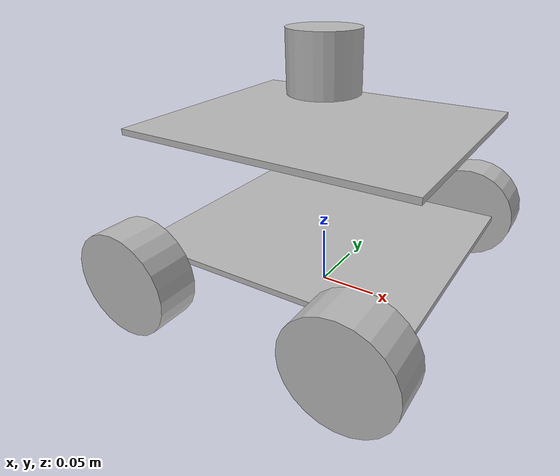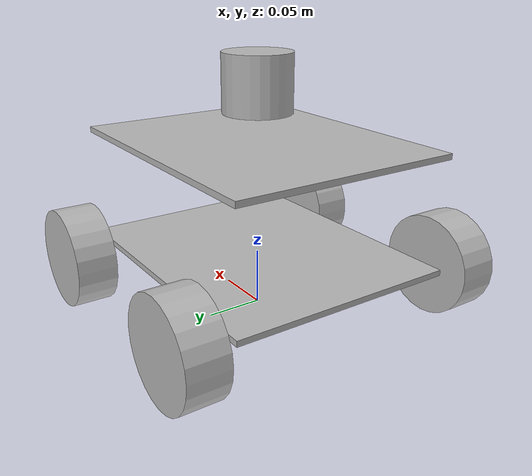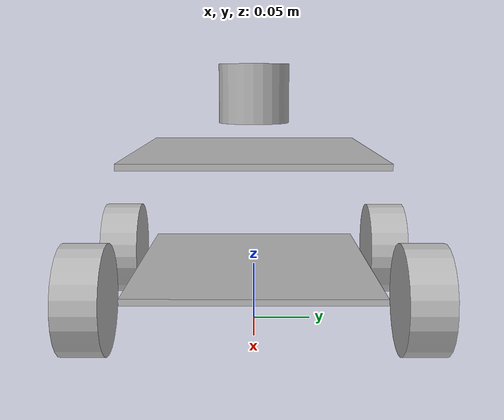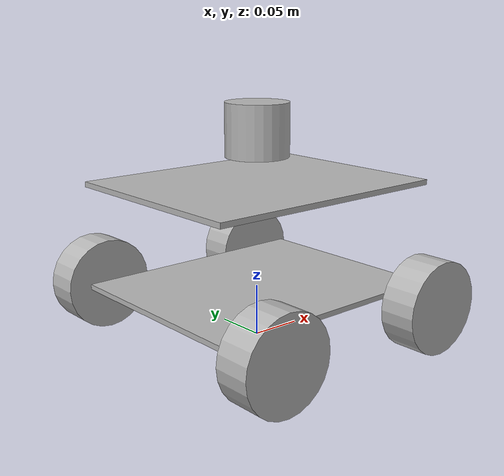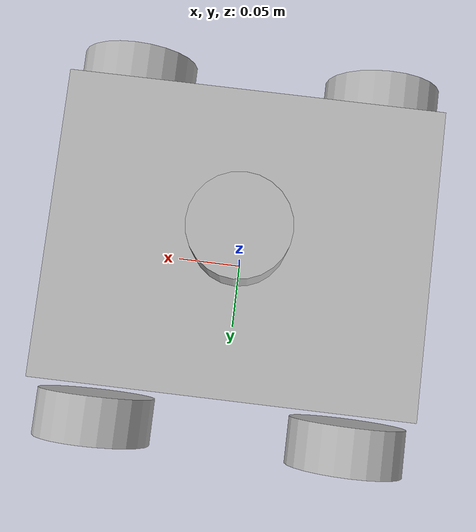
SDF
<?xml version="1.0" ?>
<sdf version="1.9">
  <model name="flexirover">
    <static>false</static>

    <link name="base_link">
      <pose>0 0 0.05 0 0 0</pose>
      <inertial>
        <mass>4.0</mass>
        <inertia><ixx>0.03</ixx><iyy>0.03</iyy><izz>0.03</izz></inertia>
      </inertial>

      <visual name="lower_plate_visual">
        <pose>0 0 0 0 0 0</pose>
        <geometry><box><size>0.246 0.200 0.005</size></box></geometry>
      </visual>

      <collision name="lower_plate_collision">
        <pose>0 0 0 0 0 0</pose>
        <geometry><box><size>0.246 0.200 0.005</size></box></geometry>
      </collision>

      <visual name="upper_plate_visual">
        <pose>0 0 0.10 0 0 0</pose>
        <geometry><box><size>0.246 0.200 0.005</size></box></geometry>
      </visual>

      <collision name="upper_plate_collision">
        <pose>0 0 0.10 0 0 0</pose>
        <geometry><box><size>0.246 0.200 0.005</size></box></geometry>
      </collision>

      <visual name="lidar_body_visual">
        <pose>0 0 0.15 0 0 0</pose>
        <geometry><cylinder><radius>0.030</radius><length>0.050</length></cylinder></geometry>
      </visual>

      <sensor name="lidar" type="gpu_lidar">
        <pose>0 0 0.15 0 0 0</pose>
        <topic>/flexirover/scan</topic>
        <update_rate>10</update_rate>
        <always_on>true</always_on>
        <visualize>true</visualize>
        <ray>
          <scan>
            <horizontal>
              <samples>720</samples>
              <resolution>1</resolution>
              <min_angle>-3.14159</min_angle>
              <max_angle>3.14159</max_angle>
            </horizontal>
          </scan>
          <range>
            <min>0.12</min>
            <max>10.0</max>
            <resolution>0.01</resolution>
          </range>
        </ray>
      </sensor>
    </link>

    <!-- Wheels: link pose gives position, visual pose gives cylinder orientation -->

    <link name="front_left_wheel">
      <pose>0.095 0.130 0.044 0 0 0</pose>
      <inertial><mass>0.3</mass><inertia><ixx>0.001</ixx><iyy>0.001</iyy><izz>0.001</izz></inertia></inertial>
      <visual name="visual"><pose>0 0 0 1.5708 0 0</pose><geometry><cylinder><radius>0.044</radius><length>0.035</length></cylinder></geometry></visual>
      <collision name="collision"><pose>0 0 0 1.5708 0 0</pose><geometry><cylinder><radius>0.044</radius><length>0.035</length></cylinder></geometry></collision>
    </link>

    <link name="front_right_wheel">
      <pose>0.095 -0.130 0.044 0 0 0</pose>
      <inertial><mass>0.3</mass><inertia><ixx>0.001</ixx><iyy>0.001</iyy><izz>0.001</izz></inertia></inertial>
      <visual name="visual"><pose>0 0 0 1.5708 0 0</pose><geometry><cylinder><radius>0.044</radius><length>0.035</length></cylinder></geometry></visual>
      <collision name="collision"><pose>0 0 0 1.5708 0 0</pose><geometry><cylinder><radius>0.044</radius><length>0.035</length></cylinder></geometry></collision>
    </link>

    <link name="rear_left_wheel">
      <pose>-0.095 0.130 0.044 0 0 0</pose>
      <inertial><mass>0.3</mass><inertia><ixx>0.001</ixx><iyy>0.001</iyy><izz>0.001</izz></inertia></inertial>
      <visual name="visual"><pose>0 0 0 1.5708 0 0</pose><geometry><cylinder><radius>0.044</radius><length>0.035</length></cylinder></geometry></visual>
      <collision name="collision"><pose>0 0 0 1.5708 0 0</pose><geometry><cylinder><radius>0.044</radius><length>0.035</length></cylinder></geometry></collision>
    </link>

    <link name="rear_right_wheel">
      <pose>-0.095 -0.130 0.044 0 0 0</pose>
      <inertial><mass>0.3</mass><inertia><ixx>0.001</ixx><iyy>0.001</iyy><izz>0.001</izz></inertia></inertial>
      <visual name="visual"><pose>0 0 0 1.5708 0 0</pose><geometry><cylinder><radius>0.044</radius><length>0.035</length></cylinder></geometry></visual>
      <collision name="collision"><pose>0 0 0 1.5708 0 0</pose><geometry><cylinder><radius>0.044</radius><length>0.035</length></cylinder></geometry></collision>
    </link>

    <joint name="front_left_wheel_joint" type="revolute">
      <parent>base_link</parent><child>front_left_wheel</child>
      <axis><xyz>0 1 0</xyz><limit><lower>-1e16</lower><upper>1e16</upper></limit></axis>
    </joint>
    <joint name="front_right_wheel_joint" type="revolute">
      <parent>base_link</parent><child>front_right_wheel</child>
      <axis><xyz>0 1 0</xyz><limit><lower>-1e16</lower><upper>1e16</upper></limit></axis>
    </joint>
    <joint name="rear_left_wheel_joint" type="revolute">
      <parent>base_link</parent><child>rear_left_wheel</child>
      <axis><xyz>0 1 0</xyz><limit><lower>-1e16</lower><upper>1e16</upper></limit></axis>
    </joint>
    <joint name="rear_right_wheel_joint" type="revolute">
      <parent>base_link</parent><child>rear_right_wheel</child>
      <axis><xyz>0 1 0</xyz><limit><lower>-1e16</lower><upper>1e16</upper></limit></axis>
    </joint>

    <plugin filename="gz-sim-velocity-control-system"
            name="gz::sim::systems::VelocityControl">
      <topic>/cmd_vel</topic>
    </plugin>

  </model>
</sdf>
